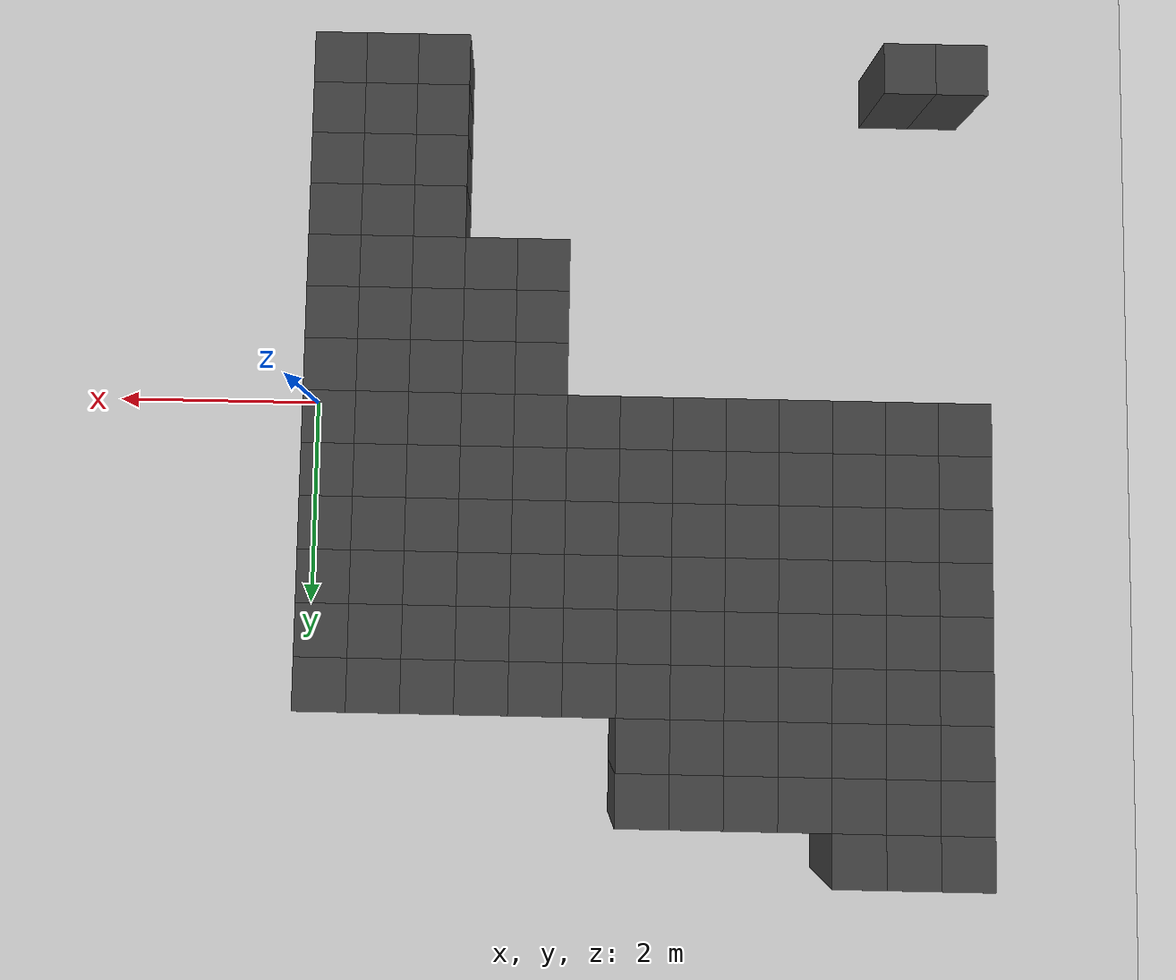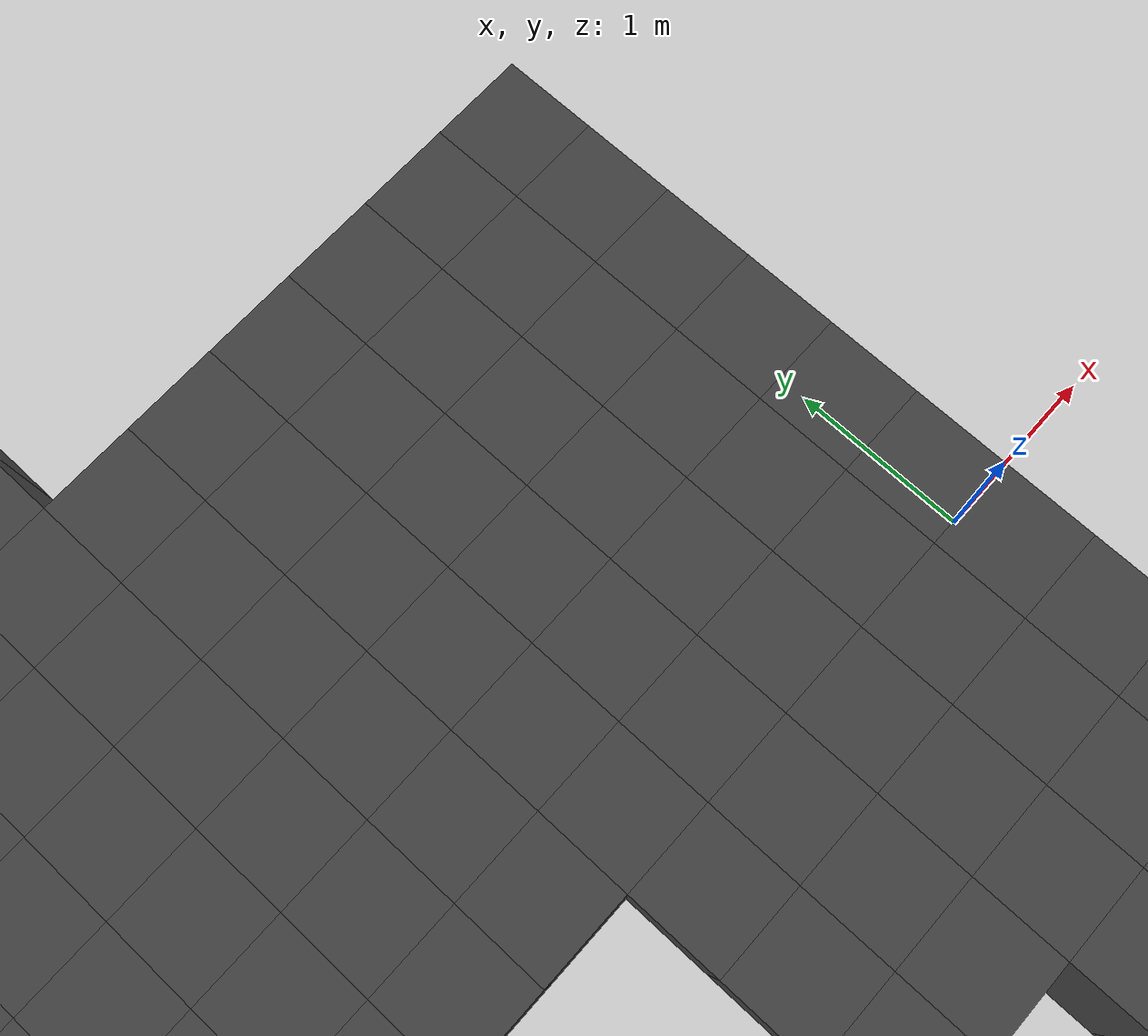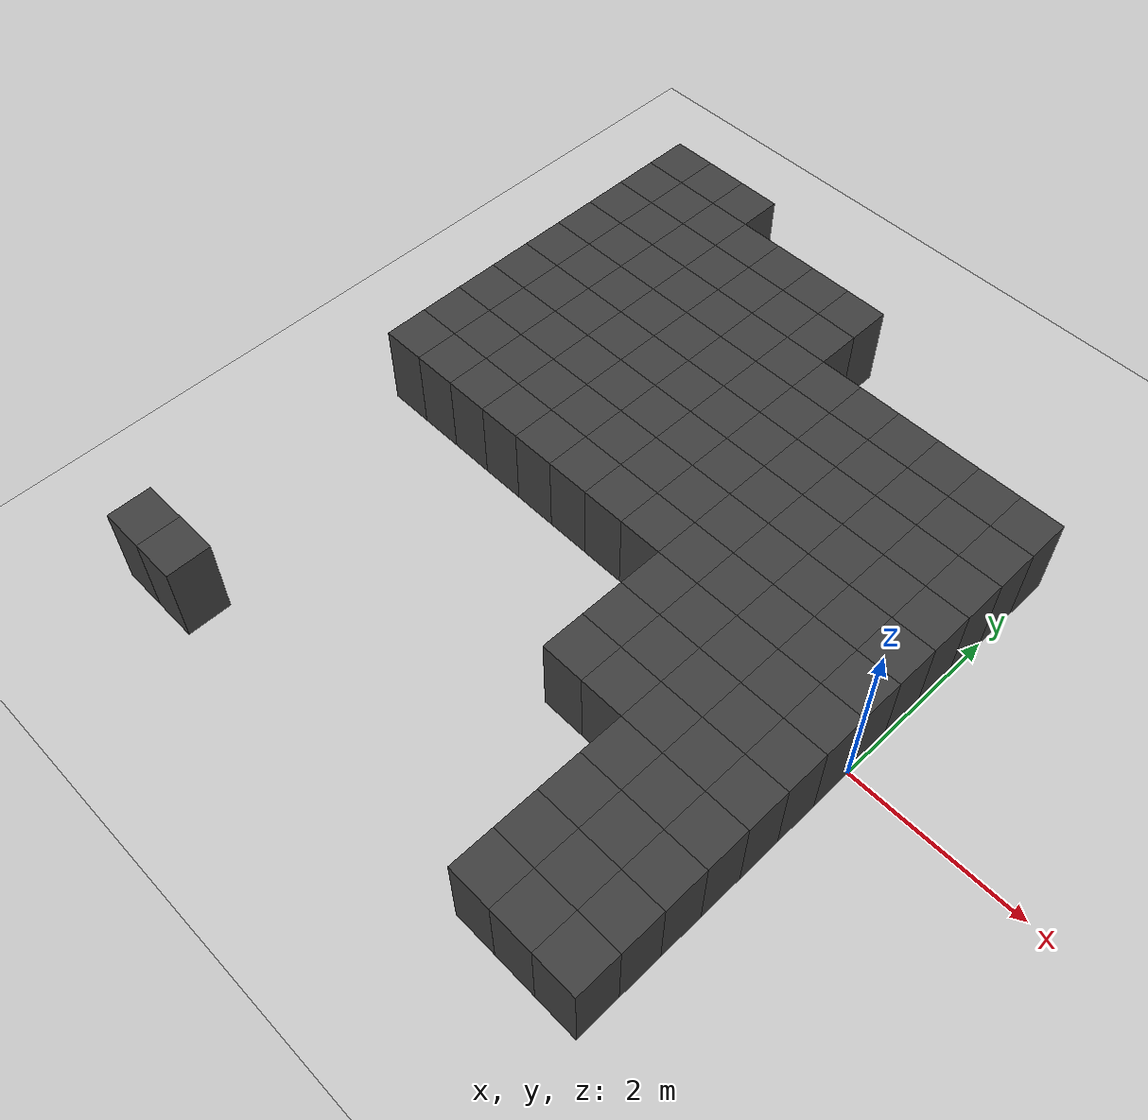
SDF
<sdf version="1.7">
 <world name="map_13820">
  <model name="ground_plane">
   <static>true</static>
   <link name="link">
    <collision name="collision">
     <geometry><plane><normal>0 0 1</normal><size>200 200</size></plane></geometry>
    </collision>
    <visual name="visual">
     <geometry><plane><normal>0 0 1</normal><size>200 200</size></plane></geometry>
     <material><ambient>0.8 0.8 0.8 1</ambient><diffuse>0.8 0.8 0.8 1</diffuse></material>
    </visual>
   </link>
  </model>
  <model name="maze_environment">
   <static>true</static>
   <link name="wall_526">
    <pose>-6.250 4.250 0.500 0 0 0</pose>
    <collision name="col"><geometry><box><size>0.5 0.5 1.0</size></box></geometry></collision>
    <visual name="vis">
     <geometry><box><size>0.5 0.5 1.0</size></box></geometry>
     <material><ambient>0.15 0.15 0.15 1</ambient><diffuse>0.25 0.25 0.25 1</diffuse></material>
    </visual>
   </link>
   <link name="wall_527">
    <pose>-5.750 4.250 0.500 0 0 0</pose>
    <collision name="col"><geometry><box><size>0.5 0.5 1.0</size></box></geometry></collision>
    <visual name="vis">
     <geometry><box><size>0.5 0.5 1.0</size></box></geometry>
     <material><ambient>0.15 0.15 0.15 1</ambient><diffuse>0.25 0.25 0.25 1</diffuse></material>
    </visual>
   </link>
   <link name="wall_528">
    <pose>-5.250 4.250 0.500 0 0 0</pose>
    <collision name="col"><geometry><box><size>0.5 0.5 1.0</size></box></geometry></collision>
    <visual name="vis">
     <geometry><box><size>0.5 0.5 1.0</size></box></geometry>
     <material><ambient>0.15 0.15 0.15 1</ambient><diffuse>0.25 0.25 0.25 1</diffuse></material>
    </visual>
   </link>
   <link name="wall_559">
    <pose>-6.250 3.750 0.500 0 0 0</pose>
    <collision name="col"><geometry><box><size>0.5 0.5 1.0</size></box></geometry></collision>
    <visual name="vis">
     <geometry><box><size>0.5 0.5 1.0</size></box></geometry>
     <material><ambient>0.15 0.15 0.15 1</ambient><diffuse>0.25 0.25 0.25 1</diffuse></material>
    </visual>
   </link>
   <link name="wall_560">
    <pose>-5.750 3.750 0.500 0 0 0</pose>
    <collision name="col"><geometry><box><size>0.5 0.5 1.0</size></box></geometry></collision>
    <visual name="vis">
     <geometry><box><size>0.5 0.5 1.0</size></box></geometry>
     <material><ambient>0.15 0.15 0.15 1</ambient><diffuse>0.25 0.25 0.25 1</diffuse></material>
    </visual>
   </link>
   <link name="wall_561">
    <pose>-5.250 3.750 0.500 0 0 0</pose>
    <collision name="col"><geometry><box><size>0.5 0.5 1.0</size></box></geometry></collision>
    <visual name="vis">
     <geometry><box><size>0.5 0.5 1.0</size></box></geometry>
     <material><ambient>0.15 0.15 0.15 1</ambient><diffuse>0.25 0.25 0.25 1</diffuse></material>
    </visual>
   </link>
   <link name="wall_562">
    <pose>-4.750 3.750 0.500 0 0 0</pose>
    <collision name="col"><geometry><box><size>0.5 0.5 1.0</size></box></geometry></collision>
    <visual name="vis">
     <geometry><box><size>0.5 0.5 1.0</size></box></geometry>
     <material><ambient>0.15 0.15 0.15 1</ambient><diffuse>0.25 0.25 0.25 1</diffuse></material>
    </visual>
   </link>
   <link name="wall_563">
    <pose>-4.250 3.750 0.500 0 0 0</pose>
    <collision name="col"><geometry><box><size>0.5 0.5 1.0</size></box></geometry></collision>
    <visual name="vis">
     <geometry><box><size>0.5 0.5 1.0</size></box></geometry>
     <material><ambient>0.15 0.15 0.15 1</ambient><diffuse>0.25 0.25 0.25 1</diffuse></material>
    </visual>
   </link>
   <link name="wall_564">
    <pose>-3.750 3.750 0.500 0 0 0</pose>
    <collision name="col"><geometry><box><size>0.5 0.5 1.0</size></box></geometry></collision>
    <visual name="vis">
     <geometry><box><size>0.5 0.5 1.0</size></box></geometry>
     <material><ambient>0.15 0.15 0.15 1</ambient><diffuse>0.25 0.25 0.25 1</diffuse></material>
    </visual>
   </link>
   <link name="wall_565">
    <pose>-3.250 3.750 0.500 0 0 0</pose>
    <collision name="col"><geometry><box><size>0.5 0.5 1.0</size></box></geometry></collision>
    <visual name="vis">
     <geometry><box><size>0.5 0.5 1.0</size></box></geometry>
     <material><ambient>0.15 0.15 0.15 1</ambient><diffuse>0.25 0.25 0.25 1</diffuse></material>
    </visual>
   </link>
   <link name="wall_596">
    <pose>-6.250 3.250 0.500 0 0 0</pose>
    <collision name="col"><geometry><box><size>0.5 0.5 1.0</size></box></geometry></collision>
    <visual name="vis">
     <geometry><box><size>0.5 0.5 1.0</size></box></geometry>
     <material><ambient>0.15 0.15 0.15 1</ambient><diffuse>0.25 0.25 0.25 1</diffuse></material>
    </visual>
   </link>
   <link name="wall_597">
    <pose>-5.750 3.250 0.500 0 0 0</pose>
    <collision name="col"><geometry><box><size>0.5 0.5 1.0</size></box></geometry></collision>
    <visual name="vis">
     <geometry><box><size>0.5 0.5 1.0</size></box></geometry>
     <material><ambient>0.15 0.15 0.15 1</ambient><diffuse>0.25 0.25 0.25 1</diffuse></material>
    </visual>
   </link>
   <link name="wall_598">
    <pose>-5.250 3.250 0.500 0 0 0</pose>
    <collision name="col"><geometry><box><size>0.5 0.5 1.0</size></box></geometry></collision>
    <visual name="vis">
     <geometry><box><size>0.5 0.5 1.0</size></box></geometry>
     <material><ambient>0.15 0.15 0.15 1</ambient><diffuse>0.25 0.25 0.25 1</diffuse></material>
    </visual>
   </link>
   <link name="wall_599">
    <pose>-4.750 3.250 0.500 0 0 0</pose>
    <collision name="col"><geometry><box><size>0.5 0.5 1.0</size></box></geometry></collision>
    <visual name="vis">
     <geometry><box><size>0.5 0.5 1.0</size></box></geometry>
     <material><ambient>0.15 0.15 0.15 1</ambient><diffuse>0.25 0.25 0.25 1</diffuse></material>
    </visual>
   </link>
   <link name="wall_600">
    <pose>-4.250 3.250 0.500 0 0 0</pose>
    <collision name="col"><geometry><box><size>0.5 0.5 1.0</size></box></geometry></collision>
    <visual name="vis">
     <geometry><box><size>0.5 0.5 1.0</size></box></geometry>
     <material><ambient>0.15 0.15 0.15 1</ambient><diffuse>0.25 0.25 0.25 1</diffuse></material>
    </visual>
   </link>
   <link name="wall_601">
    <pose>-3.750 3.250 0.500 0 0 0</pose>
    <collision name="col"><geometry><box><size>0.5 0.5 1.0</size></box></geometry></collision>
    <visual name="vis">
     <geometry><box><size>0.5 0.5 1.0</size></box></geometry>
     <material><ambient>0.15 0.15 0.15 1</ambient><diffuse>0.25 0.25 0.25 1</diffuse></material>
    </visual>
   </link>
   <link name="wall_602">
    <pose>-3.250 3.250 0.500 0 0 0</pose>
    <collision name="col"><geometry><box><size>0.5 0.5 1.0</size></box></geometry></collision>
    <visual name="vis">
     <geometry><box><size>0.5 0.5 1.0</size></box></geometry>
     <material><ambient>0.15 0.15 0.15 1</ambient><diffuse>0.25 0.25 0.25 1</diffuse></material>
    </visual>
   </link>
   <link name="wall_633">
    <pose>-6.250 2.750 0.500 0 0 0</pose>
    <collision name="col"><geometry><box><size>0.5 0.5 1.0</size></box></geometry></collision>
    <visual name="vis">
     <geometry><box><size>0.5 0.5 1.0</size></box></geometry>
     <material><ambient>0.15 0.15 0.15 1</ambient><diffuse>0.25 0.25 0.25 1</diffuse></material>
    </visual>
   </link>
   <link name="wall_634">
    <pose>-5.750 2.750 0.500 0 0 0</pose>
    <collision name="col"><geometry><box><size>0.5 0.5 1.0</size></box></geometry></collision>
    <visual name="vis">
     <geometry><box><size>0.5 0.5 1.0</size></box></geometry>
     <material><ambient>0.15 0.15 0.15 1</ambient><diffuse>0.25 0.25 0.25 1</diffuse></material>
    </visual>
   </link>
   <link name="wall_635">
    <pose>-5.250 2.750 0.500 0 0 0</pose>
    <collision name="col"><geometry><box><size>0.5 0.5 1.0</size></box></geometry></collision>
    <visual name="vis">
     <geometry><box><size>0.5 0.5 1.0</size></box></geometry>
     <material><ambient>0.15 0.15 0.15 1</ambient><diffuse>0.25 0.25 0.25 1</diffuse></material>
    </visual>
   </link>
   <link name="wall_636">
    <pose>-4.750 2.750 0.500 0 0 0</pose>
    <collision name="col"><geometry><box><size>0.5 0.5 1.0</size></box></geometry></collision>
    <visual name="vis">
     <geometry><box><size>0.5 0.5 1.0</size></box></geometry>
     <material><ambient>0.15 0.15 0.15 1</ambient><diffuse>0.25 0.25 0.25 1</diffuse></material>
    </visual>
   </link>
   <link name="wall_637">
    <pose>-4.250 2.750 0.500 0 0 0</pose>
    <collision name="col"><geometry><box><size>0.5 0.5 1.0</size></box></geometry></collision>
    <visual name="vis">
     <geometry><box><size>0.5 0.5 1.0</size></box></geometry>
     <material><ambient>0.15 0.15 0.15 1</ambient><diffuse>0.25 0.25 0.25 1</diffuse></material>
    </visual>
   </link>
   <link name="wall_638">
    <pose>-3.750 2.750 0.500 0 0 0</pose>
    <collision name="col"><geometry><box><size>0.5 0.5 1.0</size></box></geometry></collision>
    <visual name="vis">
     <geometry><box><size>0.5 0.5 1.0</size></box></geometry>
     <material><ambient>0.15 0.15 0.15 1</ambient><diffuse>0.25 0.25 0.25 1</diffuse></material>
    </visual>
   </link>
   <link name="wall_639">
    <pose>-3.250 2.750 0.500 0 0 0</pose>
    <collision name="col"><geometry><box><size>0.5 0.5 1.0</size></box></geometry></collision>
    <visual name="vis">
     <geometry><box><size>0.5 0.5 1.0</size></box></geometry>
     <material><ambient>0.15 0.15 0.15 1</ambient><diffuse>0.25 0.25 0.25 1</diffuse></material>
    </visual>
   </link>
   <link name="wall_640">
    <pose>-2.750 2.750 0.500 0 0 0</pose>
    <collision name="col"><geometry><box><size>0.5 0.5 1.0</size></box></geometry></collision>
    <visual name="vis">
     <geometry><box><size>0.5 0.5 1.0</size></box></geometry>
     <material><ambient>0.15 0.15 0.15 1</ambient><diffuse>0.25 0.25 0.25 1</diffuse></material>
    </visual>
   </link>
   <link name="wall_641">
    <pose>-2.250 2.750 0.500 0 0 0</pose>
    <collision name="col"><geometry><box><size>0.5 0.5 1.0</size></box></geometry></collision>
    <visual name="vis">
     <geometry><box><size>0.5 0.5 1.0</size></box></geometry>
     <material><ambient>0.15 0.15 0.15 1</ambient><diffuse>0.25 0.25 0.25 1</diffuse></material>
    </visual>
   </link>
   <link name="wall_642">
    <pose>-1.750 2.750 0.500 0 0 0</pose>
    <collision name="col"><geometry><box><size>0.5 0.5 1.0</size></box></geometry></collision>
    <visual name="vis">
     <geometry><box><size>0.5 0.5 1.0</size></box></geometry>
     <material><ambient>0.15 0.15 0.15 1</ambient><diffuse>0.25 0.25 0.25 1</diffuse></material>
    </visual>
   </link>
   <link name="wall_643">
    <pose>-1.250 2.750 0.500 0 0 0</pose>
    <collision name="col"><geometry><box><size>0.5 0.5 1.0</size></box></geometry></collision>
    <visual name="vis">
     <geometry><box><size>0.5 0.5 1.0</size></box></geometry>
     <material><ambient>0.15 0.15 0.15 1</ambient><diffuse>0.25 0.25 0.25 1</diffuse></material>
    </visual>
   </link>
   <link name="wall_644">
    <pose>-0.750 2.750 0.500 0 0 0</pose>
    <collision name="col"><geometry><box><size>0.5 0.5 1.0</size></box></geometry></collision>
    <visual name="vis">
     <geometry><box><size>0.5 0.5 1.0</size></box></geometry>
     <material><ambient>0.15 0.15 0.15 1</ambient><diffuse>0.25 0.25 0.25 1</diffuse></material>
    </visual>
   </link>
   <link name="wall_645">
    <pose>-0.250 2.750 0.500 0 0 0</pose>
    <collision name="col"><geometry><box><size>0.5 0.5 1.0</size></box></geometry></collision>
    <visual name="vis">
     <geometry><box><size>0.5 0.5 1.0</size></box></geometry>
     <material><ambient>0.15 0.15 0.15 1</ambient><diffuse>0.25 0.25 0.25 1</diffuse></material>
    </visual>
   </link>
   <link name="wall_675">
    <pose>-6.250 2.250 0.500 0 0 0</pose>
    <collision name="col"><geometry><box><size>0.5 0.5 1.0</size></box></geometry></collision>
    <visual name="vis">
     <geometry><box><size>0.5 0.5 1.0</size></box></geometry>
     <material><ambient>0.15 0.15 0.15 1</ambient><diffuse>0.25 0.25 0.25 1</diffuse></material>
    </visual>
   </link>
   <link name="wall_676">
    <pose>-5.750 2.250 0.500 0 0 0</pose>
    <collision name="col"><geometry><box><size>0.5 0.5 1.0</size></box></geometry></collision>
    <visual name="vis">
     <geometry><box><size>0.5 0.5 1.0</size></box></geometry>
     <material><ambient>0.15 0.15 0.15 1</ambient><diffuse>0.25 0.25 0.25 1</diffuse></material>
    </visual>
   </link>
   <link name="wall_677">
    <pose>-5.250 2.250 0.500 0 0 0</pose>
    <collision name="col"><geometry><box><size>0.5 0.5 1.0</size></box></geometry></collision>
    <visual name="vis">
     <geometry><box><size>0.5 0.5 1.0</size></box></geometry>
     <material><ambient>0.15 0.15 0.15 1</ambient><diffuse>0.25 0.25 0.25 1</diffuse></material>
    </visual>
   </link>
   <link name="wall_678">
    <pose>-4.750 2.250 0.500 0 0 0</pose>
    <collision name="col"><geometry><box><size>0.5 0.5 1.0</size></box></geometry></collision>
    <visual name="vis">
     <geometry><box><size>0.5 0.5 1.0</size></box></geometry>
     <material><ambient>0.15 0.15 0.15 1</ambient><diffuse>0.25 0.25 0.25 1</diffuse></material>
    </visual>
   </link>
   <link name="wall_679">
    <pose>-4.250 2.250 0.500 0 0 0</pose>
    <collision name="col"><geometry><box><size>0.5 0.5 1.0</size></box></geometry></collision>
    <visual name="vis">
     <geometry><box><size>0.5 0.5 1.0</size></box></geometry>
     <material><ambient>0.15 0.15 0.15 1</ambient><diffuse>0.25 0.25 0.25 1</diffuse></material>
    </visual>
   </link>
   <link name="wall_680">
    <pose>-3.750 2.250 0.500 0 0 0</pose>
    <collision name="col"><geometry><box><size>0.5 0.5 1.0</size></box></geometry></collision>
    <visual name="vis">
     <geometry><box><size>0.5 0.5 1.0</size></box></geometry>
     <material><ambient>0.15 0.15 0.15 1</ambient><diffuse>0.25 0.25 0.25 1</diffuse></material>
    </visual>
   </link>
   <link name="wall_681">
    <pose>-3.250 2.250 0.500 0 0 0</pose>
    <collision name="col"><geometry><box><size>0.5 0.5 1.0</size></box></geometry></collision>
    <visual name="vis">
     <geometry><box><size>0.5 0.5 1.0</size></box></geometry>
     <material><ambient>0.15 0.15 0.15 1</ambient><diffuse>0.25 0.25 0.25 1</diffuse></material>
    </visual>
   </link>
   <link name="wall_682">
    <pose>-2.750 2.250 0.500 0 0 0</pose>
    <collision name="col"><geometry><box><size>0.5 0.5 1.0</size></box></geometry></collision>
    <visual name="vis">
     <geometry><box><size>0.5 0.5 1.0</size></box></geometry>
     <material><ambient>0.15 0.15 0.15 1</ambient><diffuse>0.25 0.25 0.25 1</diffuse></material>
    </visual>
   </link>
   <link name="wall_683">
    <pose>-2.250 2.250 0.500 0 0 0</pose>
    <collision name="col"><geometry><box><size>0.5 0.5 1.0</size></box></geometry></collision>
    <visual name="vis">
     <geometry><box><size>0.5 0.5 1.0</size></box></geometry>
     <material><ambient>0.15 0.15 0.15 1</ambient><diffuse>0.25 0.25 0.25 1</diffuse></material>
    </visual>
   </link>
   <link name="wall_684">
    <pose>-1.750 2.250 0.500 0 0 0</pose>
    <collision name="col"><geometry><box><size>0.5 0.5 1.0</size></box></geometry></collision>
    <visual name="vis">
     <geometry><box><size>0.5 0.5 1.0</size></box></geometry>
     <material><ambient>0.15 0.15 0.15 1</ambient><diffuse>0.25 0.25 0.25 1</diffuse></material>
    </visual>
   </link>
   <link name="wall_685">
    <pose>-1.250 2.250 0.500 0 0 0</pose>
    <collision name="col"><geometry><box><size>0.5 0.5 1.0</size></box></geometry></collision>
    <visual name="vis">
     <geometry><box><size>0.5 0.5 1.0</size></box></geometry>
     <material><ambient>0.15 0.15 0.15 1</ambient><diffuse>0.25 0.25 0.25 1</diffuse></material>
    </visual>
   </link>
   <link name="wall_686">
    <pose>-0.750 2.250 0.500 0 0 0</pose>
    <collision name="col"><geometry><box><size>0.5 0.5 1.0</size></box></geometry></collision>
    <visual name="vis">
     <geometry><box><size>0.5 0.5 1.0</size></box></geometry>
     <material><ambient>0.15 0.15 0.15 1</ambient><diffuse>0.25 0.25 0.25 1</diffuse></material>
    </visual>
   </link>
   <link name="wall_687">
    <pose>-0.250 2.250 0.500 0 0 0</pose>
    <collision name="col"><geometry><box><size>0.5 0.5 1.0</size></box></geometry></collision>
    <visual name="vis">
     <geometry><box><size>0.5 0.5 1.0</size></box></geometry>
     <material><ambient>0.15 0.15 0.15 1</ambient><diffuse>0.25 0.25 0.25 1</diffuse></material>
    </visual>
   </link>
   <link name="wall_717">
    <pose>-6.250 1.750 0.500 0 0 0</pose>
    <collision name="col"><geometry><box><size>0.5 0.5 1.0</size></box></geometry></collision>
    <visual name="vis">
     <geometry><box><size>0.5 0.5 1.0</size></box></geometry>
     <material><ambient>0.15 0.15 0.15 1</ambient><diffuse>0.25 0.25 0.25 1</diffuse></material>
    </visual>
   </link>
   <link name="wall_718">
    <pose>-5.750 1.750 0.500 0 0 0</pose>
    <collision name="col"><geometry><box><size>0.5 0.5 1.0</size></box></geometry></collision>
    <visual name="vis">
     <geometry><box><size>0.5 0.5 1.0</size></box></geometry>
     <material><ambient>0.15 0.15 0.15 1</ambient><diffuse>0.25 0.25 0.25 1</diffuse></material>
    </visual>
   </link>
   <link name="wall_719">
    <pose>-5.250 1.750 0.500 0 0 0</pose>
    <collision name="col"><geometry><box><size>0.5 0.5 1.0</size></box></geometry></collision>
    <visual name="vis">
     <geometry><box><size>0.5 0.5 1.0</size></box></geometry>
     <material><ambient>0.15 0.15 0.15 1</ambient><diffuse>0.25 0.25 0.25 1</diffuse></material>
    </visual>
   </link>
   <link name="wall_720">
    <pose>-4.750 1.750 0.500 0 0 0</pose>
    <collision name="col"><geometry><box><size>0.5 0.5 1.0</size></box></geometry></collision>
    <visual name="vis">
     <geometry><box><size>0.5 0.5 1.0</size></box></geometry>
     <material><ambient>0.15 0.15 0.15 1</ambient><diffuse>0.25 0.25 0.25 1</diffuse></material>
    </visual>
   </link>
   <link name="wall_721">
    <pose>-4.250 1.750 0.500 0 0 0</pose>
    <collision name="col"><geometry><box><size>0.5 0.5 1.0</size></box></geometry></collision>
    <visual name="vis">
     <geometry><box><size>0.5 0.5 1.0</size></box></geometry>
     <material><ambient>0.15 0.15 0.15 1</ambient><diffuse>0.25 0.25 0.25 1</diffuse></material>
    </visual>
   </link>
   <link name="wall_722">
    <pose>-3.750 1.750 0.500 0 0 0</pose>
    <collision name="col"><geometry><box><size>0.5 0.5 1.0</size></box></geometry></collision>
    <visual name="vis">
     <geometry><box><size>0.5 0.5 1.0</size></box></geometry>
     <material><ambient>0.15 0.15 0.15 1</ambient><diffuse>0.25 0.25 0.25 1</diffuse></material>
    </visual>
   </link>
   <link name="wall_723">
    <pose>-3.250 1.750 0.500 0 0 0</pose>
    <collision name="col"><geometry><box><size>0.5 0.5 1.0</size></box></geometry></collision>
    <visual name="vis">
     <geometry><box><size>0.5 0.5 1.0</size></box></geometry>
     <material><ambient>0.15 0.15 0.15 1</ambient><diffuse>0.25 0.25 0.25 1</diffuse></material>
    </visual>
   </link>
   <link name="wall_724">
    <pose>-2.750 1.750 0.500 0 0 0</pose>
    <collision name="col"><geometry><box><size>0.5 0.5 1.0</size></box></geometry></collision>
    <visual name="vis">
     <geometry><box><size>0.5 0.5 1.0</size></box></geometry>
     <material><ambient>0.15 0.15 0.15 1</ambient><diffuse>0.25 0.25 0.25 1</diffuse></material>
    </visual>
   </link>
   <link name="wall_725">
    <pose>-2.250 1.750 0.500 0 0 0</pose>
    <collision name="col"><geometry><box><size>0.5 0.5 1.0</size></box></geometry></collision>
    <visual name="vis">
     <geometry><box><size>0.5 0.5 1.0</size></box></geometry>
     <material><ambient>0.15 0.15 0.15 1</ambient><diffuse>0.25 0.25 0.25 1</diffuse></material>
    </visual>
   </link>
   <link name="wall_726">
    <pose>-1.750 1.750 0.500 0 0 0</pose>
    <collision name="col"><geometry><box><size>0.5 0.5 1.0</size></box></geometry></collision>
    <visual name="vis">
     <geometry><box><size>0.5 0.5 1.0</size></box></geometry>
     <material><ambient>0.15 0.15 0.15 1</ambient><diffuse>0.25 0.25 0.25 1</diffuse></material>
    </visual>
   </link>
   <link name="wall_727">
    <pose>-1.250 1.750 0.500 0 0 0</pose>
    <collision name="col"><geometry><box><size>0.5 0.5 1.0</size></box></geometry></collision>
    <visual name="vis">
     <geometry><box><size>0.5 0.5 1.0</size></box></geometry>
     <material><ambient>0.15 0.15 0.15 1</ambient><diffuse>0.25 0.25 0.25 1</diffuse></material>
    </visual>
   </link>
   <link name="wall_728">
    <pose>-0.750 1.750 0.500 0 0 0</pose>
    <collision name="col"><geometry><box><size>0.5 0.5 1.0</size></box></geometry></collision>
    <visual name="vis">
     <geometry><box><size>0.5 0.5 1.0</size></box></geometry>
     <material><ambient>0.15 0.15 0.15 1</ambient><diffuse>0.25 0.25 0.25 1</diffuse></material>
    </visual>
   </link>
   <link name="wall_729">
    <pose>-0.250 1.750 0.500 0 0 0</pose>
    <collision name="col"><geometry><box><size>0.5 0.5 1.0</size></box></geometry></collision>
    <visual name="vis">
     <geometry><box><size>0.5 0.5 1.0</size></box></geometry>
     <material><ambient>0.15 0.15 0.15 1</ambient><diffuse>0.25 0.25 0.25 1</diffuse></material>
    </visual>
   </link>
   <link name="wall_759">
    <pose>-6.250 1.250 0.500 0 0 0</pose>
    <collision name="col"><geometry><box><size>0.5 0.5 1.0</size></box></geometry></collision>
    <visual name="vis">
     <geometry><box><size>0.5 0.5 1.0</size></box></geometry>
     <material><ambient>0.15 0.15 0.15 1</ambient><diffuse>0.25 0.25 0.25 1</diffuse></material>
    </visual>
   </link>
   <link name="wall_760">
    <pose>-5.750 1.250 0.500 0 0 0</pose>
    <collision name="col"><geometry><box><size>0.5 0.5 1.0</size></box></geometry></collision>
    <visual name="vis">
     <geometry><box><size>0.5 0.5 1.0</size></box></geometry>
     <material><ambient>0.15 0.15 0.15 1</ambient><diffuse>0.25 0.25 0.25 1</diffuse></material>
    </visual>
   </link>
   <link name="wall_761">
    <pose>-5.250 1.250 0.500 0 0 0</pose>
    <collision name="col"><geometry><box><size>0.5 0.5 1.0</size></box></geometry></collision>
    <visual name="vis">
     <geometry><box><size>0.5 0.5 1.0</size></box></geometry>
     <material><ambient>0.15 0.15 0.15 1</ambient><diffuse>0.25 0.25 0.25 1</diffuse></material>
    </visual>
   </link>
   <link name="wall_762">
    <pose>-4.750 1.250 0.500 0 0 0</pose>
    <collision name="col"><geometry><box><size>0.5 0.5 1.0</size></box></geometry></collision>
    <visual name="vis">
     <geometry><box><size>0.5 0.5 1.0</size></box></geometry>
     <material><ambient>0.15 0.15 0.15 1</ambient><diffuse>0.25 0.25 0.25 1</diffuse></material>
    </visual>
   </link>
   <link name="wall_763">
    <pose>-4.250 1.250 0.500 0 0 0</pose>
    <collision name="col"><geometry><box><size>0.5 0.5 1.0</size></box></geometry></collision>
    <visual name="vis">
     <geometry><box><size>0.5 0.5 1.0</size></box></geometry>
     <material><ambient>0.15 0.15 0.15 1</ambient><diffuse>0.25 0.25 0.25 1</diffuse></material>
    </visual>
   </link>
   <link name="wall_764">
    <pose>-3.750 1.250 0.500 0 0 0</pose>
    <collision name="col"><geometry><box><size>0.5 0.5 1.0</size></box></geometry></collision>
    <visual name="vis">
     <geometry><box><size>0.5 0.5 1.0</size></box></geometry>
     <material><ambient>0.15 0.15 0.15 1</ambient><diffuse>0.25 0.25 0.25 1</diffuse></material>
    </visual>
   </link>
   <link name="wall_765">
    <pose>-3.250 1.250 0.500 0 0 0</pose>
    <collision name="col"><geometry><box><size>0.5 0.5 1.0</size></box></geometry></collision>
    <visual name="vis">
     <geometry><box><size>0.5 0.5 1.0</size></box></geometry>
     <material><ambient>0.15 0.15 0.15 1</ambient><diffuse>0.25 0.25 0.25 1</diffuse></material>
    </visual>
   </link>
   <link name="wall_766">
    <pose>-2.750 1.250 0.500 0 0 0</pose>
    <collision name="col"><geometry><box><size>0.5 0.5 1.0</size></box></geometry></collision>
    <visual name="vis">
     <geometry><box><size>0.5 0.5 1.0</size></box></geometry>
     <material><ambient>0.15 0.15 0.15 1</ambient><diffuse>0.25 0.25 0.25 1</diffuse></material>
    </visual>
   </link>
   <link name="wall_767">
    <pose>-2.250 1.250 0.500 0 0 0</pose>
    <collision name="col"><geometry><box><size>0.5 0.5 1.0</size></box></geometry></collision>
    <visual name="vis">
     <geometry><box><size>0.5 0.5 1.0</size></box></geometry>
     <material><ambient>0.15 0.15 0.15 1</ambient><diffuse>0.25 0.25 0.25 1</diffuse></material>
    </visual>
   </link>
   <link name="wall_768">
    <pose>-1.750 1.250 0.500 0 0 0</pose>
    <collision name="col"><geometry><box><size>0.5 0.5 1.0</size></box></geometry></collision>
    <visual name="vis">
     <geometry><box><size>0.5 0.5 1.0</size></box></geometry>
     <material><ambient>0.15 0.15 0.15 1</ambient><diffuse>0.25 0.25 0.25 1</diffuse></material>
    </visual>
   </link>
   <link name="wall_769">
    <pose>-1.250 1.250 0.500 0 0 0</pose>
    <collision name="col"><geometry><box><size>0.5 0.5 1.0</size></box></geometry></collision>
    <visual name="vis">
     <geometry><box><size>0.5 0.5 1.0</size></box></geometry>
     <material><ambient>0.15 0.15 0.15 1</ambient><diffuse>0.25 0.25 0.25 1</diffuse></material>
    </visual>
   </link>
   <link name="wall_770">
    <pose>-0.750 1.250 0.500 0 0 0</pose>
    <collision name="col"><geometry><box><size>0.5 0.5 1.0</size></box></geometry></collision>
    <visual name="vis">
     <geometry><box><size>0.5 0.5 1.0</size></box></geometry>
     <material><ambient>0.15 0.15 0.15 1</ambient><diffuse>0.25 0.25 0.25 1</diffuse></material>
    </visual>
   </link>
   <link name="wall_771">
    <pose>-0.250 1.250 0.500 0 0 0</pose>
    <collision name="col"><geometry><box><size>0.5 0.5 1.0</size></box></geometry></collision>
    <visual name="vis">
     <geometry><box><size>0.5 0.5 1.0</size></box></geometry>
     <material><ambient>0.15 0.15 0.15 1</ambient><diffuse>0.25 0.25 0.25 1</diffuse></material>
    </visual>
   </link>
   <link name="wall_801">
    <pose>-6.250 0.750 0.500 0 0 0</pose>
    <collision name="col"><geometry><box><size>0.5 0.5 1.0</size></box></geometry></collision>
    <visual name="vis">
     <geometry><box><size>0.5 0.5 1.0</size></box></geometry>
     <material><ambient>0.15 0.15 0.15 1</ambient><diffuse>0.25 0.25 0.25 1</diffuse></material>
    </visual>
   </link>
   <link name="wall_802">
    <pose>-5.750 0.750 0.500 0 0 0</pose>
    <collision name="col"><geometry><box><size>0.5 0.5 1.0</size></box></geometry></collision>
    <visual name="vis">
     <geometry><box><size>0.5 0.5 1.0</size></box></geometry>
     <material><ambient>0.15 0.15 0.15 1</ambient><diffuse>0.25 0.25 0.25 1</diffuse></material>
    </visual>
   </link>
   <link name="wall_803">
    <pose>-5.250 0.750 0.500 0 0 0</pose>
    <collision name="col"><geometry><box><size>0.5 0.5 1.0</size></box></geometry></collision>
    <visual name="vis">
     <geometry><box><size>0.5 0.5 1.0</size></box></geometry>
     <material><ambient>0.15 0.15 0.15 1</ambient><diffuse>0.25 0.25 0.25 1</diffuse></material>
    </visual>
   </link>
   <link name="wall_804">
    <pose>-4.750 0.750 0.500 0 0 0</pose>
    <collision name="col"><geometry><box><size>0.5 0.5 1.0</size></box></geometry></collision>
    <visual name="vis">
     <geometry><box><size>0.5 0.5 1.0</size></box></geometry>
     <material><ambient>0.15 0.15 0.15 1</ambient><diffuse>0.25 0.25 0.25 1</diffuse></material>
    </visual>
   </link>
   <link name="wall_805">
    <pose>-4.250 0.750 0.500 0 0 0</pose>
    <collision name="col"><geometry><box><size>0.5 0.5 1.0</size></box></geometry></collision>
    <visual name="vis">
     <geometry><box><size>0.5 0.5 1.0</size></box></geometry>
     <material><ambient>0.15 0.15 0.15 1</ambient><diffuse>0.25 0.25 0.25 1</diffuse></material>
    </visual>
   </link>
   <link name="wall_806">
    <pose>-3.750 0.750 0.500 0 0 0</pose>
    <collision name="col"><geometry><box><size>0.5 0.5 1.0</size></box></geometry></collision>
    <visual name="vis">
     <geometry><box><size>0.5 0.5 1.0</size></box></geometry>
     <material><ambient>0.15 0.15 0.15 1</ambient><diffuse>0.25 0.25 0.25 1</diffuse></material>
    </visual>
   </link>
   <link name="wall_807">
    <pose>-3.250 0.750 0.500 0 0 0</pose>
    <collision name="col"><geometry><box><size>0.5 0.5 1.0</size></box></geometry></collision>
    <visual name="vis">
     <geometry><box><size>0.5 0.5 1.0</size></box></geometry>
     <material><ambient>0.15 0.15 0.15 1</ambient><diffuse>0.25 0.25 0.25 1</diffuse></material>
    </visual>
   </link>
   <link name="wall_808">
    <pose>-2.750 0.750 0.500 0 0 0</pose>
    <collision name="col"><geometry><box><size>0.5 0.5 1.0</size></box></geometry></collision>
    <visual name="vis">
     <geometry><box><size>0.5 0.5 1.0</size></box></geometry>
     <material><ambient>0.15 0.15 0.15 1</ambient><diffuse>0.25 0.25 0.25 1</diffuse></material>
    </visual>
   </link>
   <link name="wall_809">
    <pose>-2.250 0.750 0.500 0 0 0</pose>
    <collision name="col"><geometry><box><size>0.5 0.5 1.0</size></box></geometry></collision>
    <visual name="vis">
     <geometry><box><size>0.5 0.5 1.0</size></box></geometry>
     <material><ambient>0.15 0.15 0.15 1</ambient><diffuse>0.25 0.25 0.25 1</diffuse></material>
    </visual>
   </link>
   <link name="wall_810">
    <pose>-1.750 0.750 0.500 0 0 0</pose>
    <collision name="col"><geometry><box><size>0.5 0.5 1.0</size></box></geometry></collision>
    <visual name="vis">
     <geometry><box><size>0.5 0.5 1.0</size></box></geometry>
     <material><ambient>0.15 0.15 0.15 1</ambient><diffuse>0.25 0.25 0.25 1</diffuse></material>
    </visual>
   </link>
   <link name="wall_811">
    <pose>-1.250 0.750 0.500 0 0 0</pose>
    <collision name="col"><geometry><box><size>0.5 0.5 1.0</size></box></geometry></collision>
    <visual name="vis">
     <geometry><box><size>0.5 0.5 1.0</size></box></geometry>
     <material><ambient>0.15 0.15 0.15 1</ambient><diffuse>0.25 0.25 0.25 1</diffuse></material>
    </visual>
   </link>
   <link name="wall_812">
    <pose>-0.750 0.750 0.500 0 0 0</pose>
    <collision name="col"><geometry><box><size>0.5 0.5 1.0</size></box></geometry></collision>
    <visual name="vis">
     <geometry><box><size>0.5 0.5 1.0</size></box></geometry>
     <material><ambient>0.15 0.15 0.15 1</ambient><diffuse>0.25 0.25 0.25 1</diffuse></material>
    </visual>
   </link>
   <link name="wall_813">
    <pose>-0.250 0.750 0.500 0 0 0</pose>
    <collision name="col"><geometry><box><size>0.5 0.5 1.0</size></box></geometry></collision>
    <visual name="vis">
     <geometry><box><size>0.5 0.5 1.0</size></box></geometry>
     <material><ambient>0.15 0.15 0.15 1</ambient><diffuse>0.25 0.25 0.25 1</diffuse></material>
    </visual>
   </link>
   <link name="wall_843">
    <pose>-6.250 0.250 0.500 0 0 0</pose>
    <collision name="col"><geometry><box><size>0.5 0.5 1.0</size></box></geometry></collision>
    <visual name="vis">
     <geometry><box><size>0.5 0.5 1.0</size></box></geometry>
     <material><ambient>0.15 0.15 0.15 1</ambient><diffuse>0.25 0.25 0.25 1</diffuse></material>
    </visual>
   </link>
   <link name="wall_844">
    <pose>-5.750 0.250 0.500 0 0 0</pose>
    <collision name="col"><geometry><box><size>0.5 0.5 1.0</size></box></geometry></collision>
    <visual name="vis">
     <geometry><box><size>0.5 0.5 1.0</size></box></geometry>
     <material><ambient>0.15 0.15 0.15 1</ambient><diffuse>0.25 0.25 0.25 1</diffuse></material>
    </visual>
   </link>
   <link name="wall_845">
    <pose>-5.250 0.250 0.500 0 0 0</pose>
    <collision name="col"><geometry><box><size>0.5 0.5 1.0</size></box></geometry></collision>
    <visual name="vis">
     <geometry><box><size>0.5 0.5 1.0</size></box></geometry>
     <material><ambient>0.15 0.15 0.15 1</ambient><diffuse>0.25 0.25 0.25 1</diffuse></material>
    </visual>
   </link>
   <link name="wall_846">
    <pose>-4.750 0.250 0.500 0 0 0</pose>
    <collision name="col"><geometry><box><size>0.5 0.5 1.0</size></box></geometry></collision>
    <visual name="vis">
     <geometry><box><size>0.5 0.5 1.0</size></box></geometry>
     <material><ambient>0.15 0.15 0.15 1</ambient><diffuse>0.25 0.25 0.25 1</diffuse></material>
    </visual>
   </link>
   <link name="wall_847">
    <pose>-4.250 0.250 0.500 0 0 0</pose>
    <collision name="col"><geometry><box><size>0.5 0.5 1.0</size></box></geometry></collision>
    <visual name="vis">
     <geometry><box><size>0.5 0.5 1.0</size></box></geometry>
     <material><ambient>0.15 0.15 0.15 1</ambient><diffuse>0.25 0.25 0.25 1</diffuse></material>
    </visual>
   </link>
   <link name="wall_848">
    <pose>-3.750 0.250 0.500 0 0 0</pose>
    <collision name="col"><geometry><box><size>0.5 0.5 1.0</size></box></geometry></collision>
    <visual name="vis">
     <geometry><box><size>0.5 0.5 1.0</size></box></geometry>
     <material><ambient>0.15 0.15 0.15 1</ambient><diffuse>0.25 0.25 0.25 1</diffuse></material>
    </visual>
   </link>
   <link name="wall_849">
    <pose>-3.250 0.250 0.500 0 0 0</pose>
    <collision name="col"><geometry><box><size>0.5 0.5 1.0</size></box></geometry></collision>
    <visual name="vis">
     <geometry><box><size>0.5 0.5 1.0</size></box></geometry>
     <material><ambient>0.15 0.15 0.15 1</ambient><diffuse>0.25 0.25 0.25 1</diffuse></material>
    </visual>
   </link>
   <link name="wall_850">
    <pose>-2.750 0.250 0.500 0 0 0</pose>
    <collision name="col"><geometry><box><size>0.5 0.5 1.0</size></box></geometry></collision>
    <visual name="vis">
     <geometry><box><size>0.5 0.5 1.0</size></box></geometry>
     <material><ambient>0.15 0.15 0.15 1</ambient><diffuse>0.25 0.25 0.25 1</diffuse></material>
    </visual>
   </link>
   <link name="wall_851">
    <pose>-2.250 0.250 0.500 0 0 0</pose>
    <collision name="col"><geometry><box><size>0.5 0.5 1.0</size></box></geometry></collision>
    <visual name="vis">
     <geometry><box><size>0.5 0.5 1.0</size></box></geometry>
     <material><ambient>0.15 0.15 0.15 1</ambient><diffuse>0.25 0.25 0.25 1</diffuse></material>
    </visual>
   </link>
   <link name="wall_852">
    <pose>-1.750 0.250 0.500 0 0 0</pose>
    <collision name="col"><geometry><box><size>0.5 0.5 1.0</size></box></geometry></collision>
    <visual name="vis">
     <geometry><box><size>0.5 0.5 1.0</size></box></geometry>
     <material><ambient>0.15 0.15 0.15 1</ambient><diffuse>0.25 0.25 0.25 1</diffuse></material>
    </visual>
   </link>
   <link name="wall_853">
    <pose>-1.250 0.250 0.500 0 0 0</pose>
    <collision name="col"><geometry><box><size>0.5 0.5 1.0</size></box></geometry></collision>
    <visual name="vis">
     <geometry><box><size>0.5 0.5 1.0</size></box></geometry>
     <material><ambient>0.15 0.15 0.15 1</ambient><diffuse>0.25 0.25 0.25 1</diffuse></material>
    </visual>
   </link>
   <link name="wall_854">
    <pose>-0.750 0.250 0.500 0 0 0</pose>
    <collision name="col"><geometry><box><size>0.5 0.5 1.0</size></box></geometry></collision>
    <visual name="vis">
     <geometry><box><size>0.5 0.5 1.0</size></box></geometry>
     <material><ambient>0.15 0.15 0.15 1</ambient><diffuse>0.25 0.25 0.25 1</diffuse></material>
    </visual>
   </link>
   <link name="wall_855">
    <pose>-0.250 0.250 0.500 0 0 0</pose>
    <collision name="col"><geometry><box><size>0.5 0.5 1.0</size></box></geometry></collision>
    <visual name="vis">
     <geometry><box><size>0.5 0.5 1.0</size></box></geometry>
     <material><ambient>0.15 0.15 0.15 1</ambient><diffuse>0.25 0.25 0.25 1</diffuse></material>
    </visual>
   </link>
   <link name="wall_891">
    <pose>-2.250 -0.250 0.500 0 0 0</pose>
    <collision name="col"><geometry><box><size>0.5 0.5 1.0</size></box></geometry></collision>
    <visual name="vis">
     <geometry><box><size>0.5 0.5 1.0</size></box></geometry>
     <material><ambient>0.15 0.15 0.15 1</ambient><diffuse>0.25 0.25 0.25 1</diffuse></material>
    </visual>
   </link>
   <link name="wall_892">
    <pose>-1.750 -0.250 0.500 0 0 0</pose>
    <collision name="col"><geometry><box><size>0.5 0.5 1.0</size></box></geometry></collision>
    <visual name="vis">
     <geometry><box><size>0.5 0.5 1.0</size></box></geometry>
     <material><ambient>0.15 0.15 0.15 1</ambient><diffuse>0.25 0.25 0.25 1</diffuse></material>
    </visual>
   </link>
   <link name="wall_893">
    <pose>-1.250 -0.250 0.500 0 0 0</pose>
    <collision name="col"><geometry><box><size>0.5 0.5 1.0</size></box></geometry></collision>
    <visual name="vis">
     <geometry><box><size>0.5 0.5 1.0</size></box></geometry>
     <material><ambient>0.15 0.15 0.15 1</ambient><diffuse>0.25 0.25 0.25 1</diffuse></material>
    </visual>
   </link>
   <link name="wall_894">
    <pose>-0.750 -0.250 0.500 0 0 0</pose>
    <collision name="col"><geometry><box><size>0.5 0.5 1.0</size></box></geometry></collision>
    <visual name="vis">
     <geometry><box><size>0.5 0.5 1.0</size></box></geometry>
     <material><ambient>0.15 0.15 0.15 1</ambient><diffuse>0.25 0.25 0.25 1</diffuse></material>
    </visual>
   </link>
   <link name="wall_895">
    <pose>-0.250 -0.250 0.500 0 0 0</pose>
    <collision name="col"><geometry><box><size>0.5 0.5 1.0</size></box></geometry></collision>
    <visual name="vis">
     <geometry><box><size>0.5 0.5 1.0</size></box></geometry>
     <material><ambient>0.15 0.15 0.15 1</ambient><diffuse>0.25 0.25 0.25 1</diffuse></material>
    </visual>
   </link>
   <link name="wall_931">
    <pose>-2.250 -0.750 0.500 0 0 0</pose>
    <collision name="col"><geometry><box><size>0.5 0.5 1.0</size></box></geometry></collision>
    <visual name="vis">
     <geometry><box><size>0.5 0.5 1.0</size></box></geometry>
     <material><ambient>0.15 0.15 0.15 1</ambient><diffuse>0.25 0.25 0.25 1</diffuse></material>
    </visual>
   </link>
   <link name="wall_932">
    <pose>-1.750 -0.750 0.500 0 0 0</pose>
    <collision name="col"><geometry><box><size>0.5 0.5 1.0</size></box></geometry></collision>
    <visual name="vis">
     <geometry><box><size>0.5 0.5 1.0</size></box></geometry>
     <material><ambient>0.15 0.15 0.15 1</ambient><diffuse>0.25 0.25 0.25 1</diffuse></material>
    </visual>
   </link>
   <link name="wall_933">
    <pose>-1.250 -0.750 0.500 0 0 0</pose>
    <collision name="col"><geometry><box><size>0.5 0.5 1.0</size></box></geometry></collision>
    <visual name="vis">
     <geometry><box><size>0.5 0.5 1.0</size></box></geometry>
     <material><ambient>0.15 0.15 0.15 1</ambient><diffuse>0.25 0.25 0.25 1</diffuse></material>
    </visual>
   </link>
   <link name="wall_934">
    <pose>-0.750 -0.750 0.500 0 0 0</pose>
    <collision name="col"><geometry><box><size>0.5 0.5 1.0</size></box></geometry></collision>
    <visual name="vis">
     <geometry><box><size>0.5 0.5 1.0</size></box></geometry>
     <material><ambient>0.15 0.15 0.15 1</ambient><diffuse>0.25 0.25 0.25 1</diffuse></material>
    </visual>
   </link>
   <link name="wall_935">
    <pose>-0.250 -0.750 0.500 0 0 0</pose>
    <collision name="col"><geometry><box><size>0.5 0.5 1.0</size></box></geometry></collision>
    <visual name="vis">
     <geometry><box><size>0.5 0.5 1.0</size></box></geometry>
     <material><ambient>0.15 0.15 0.15 1</ambient><diffuse>0.25 0.25 0.25 1</diffuse></material>
    </visual>
   </link>
   <link name="wall_964">
    <pose>-2.250 -1.250 0.500 0 0 0</pose>
    <collision name="col"><geometry><box><size>0.5 0.5 1.0</size></box></geometry></collision>
    <visual name="vis">
     <geometry><box><size>0.5 0.5 1.0</size></box></geometry>
     <material><ambient>0.15 0.15 0.15 1</ambient><diffuse>0.25 0.25 0.25 1</diffuse></material>
    </visual>
   </link>
   <link name="wall_965">
    <pose>-1.750 -1.250 0.500 0 0 0</pose>
    <collision name="col"><geometry><box><size>0.5 0.5 1.0</size></box></geometry></collision>
    <visual name="vis">
     <geometry><box><size>0.5 0.5 1.0</size></box></geometry>
     <material><ambient>0.15 0.15 0.15 1</ambient><diffuse>0.25 0.25 0.25 1</diffuse></material>
    </visual>
   </link>
   <link name="wall_966">
    <pose>-1.250 -1.250 0.500 0 0 0</pose>
    <collision name="col"><geometry><box><size>0.5 0.5 1.0</size></box></geometry></collision>
    <visual name="vis">
     <geometry><box><size>0.5 0.5 1.0</size></box></geometry>
     <material><ambient>0.15 0.15 0.15 1</ambient><diffuse>0.25 0.25 0.25 1</diffuse></material>
    </visual>
   </link>
   <link name="wall_967">
    <pose>-0.750 -1.250 0.500 0 0 0</pose>
    <collision name="col"><geometry><box><size>0.5 0.5 1.0</size></box></geometry></collision>
    <visual name="vis">
     <geometry><box><size>0.5 0.5 1.0</size></box></geometry>
     <material><ambient>0.15 0.15 0.15 1</ambient><diffuse>0.25 0.25 0.25 1</diffuse></material>
    </visual>
   </link>
   <link name="wall_968">
    <pose>-0.250 -1.250 0.500 0 0 0</pose>
    <collision name="col"><geometry><box><size>0.5 0.5 1.0</size></box></geometry></collision>
    <visual name="vis">
     <geometry><box><size>0.5 0.5 1.0</size></box></geometry>
     <material><ambient>0.15 0.15 0.15 1</ambient><diffuse>0.25 0.25 0.25 1</diffuse></material>
    </visual>
   </link>
   <link name="wall_992">
    <pose>-1.250 -1.750 0.500 0 0 0</pose>
    <collision name="col"><geometry><box><size>0.5 0.5 1.0</size></box></geometry></collision>
    <visual name="vis">
     <geometry><box><size>0.5 0.5 1.0</size></box></geometry>
     <material><ambient>0.15 0.15 0.15 1</ambient><diffuse>0.25 0.25 0.25 1</diffuse></material>
    </visual>
   </link>
   <link name="wall_993">
    <pose>-0.750 -1.750 0.500 0 0 0</pose>
    <collision name="col"><geometry><box><size>0.5 0.5 1.0</size></box></geometry></collision>
    <visual name="vis">
     <geometry><box><size>0.5 0.5 1.0</size></box></geometry>
     <material><ambient>0.15 0.15 0.15 1</ambient><diffuse>0.25 0.25 0.25 1</diffuse></material>
    </visual>
   </link>
   <link name="wall_994">
    <pose>-0.250 -1.750 0.500 0 0 0</pose>
    <collision name="col"><geometry><box><size>0.5 0.5 1.0</size></box></geometry></collision>
    <visual name="vis">
     <geometry><box><size>0.5 0.5 1.0</size></box></geometry>
     <material><ambient>0.15 0.15 0.15 1</ambient><diffuse>0.25 0.25 0.25 1</diffuse></material>
    </visual>
   </link>
   <link name="wall_1021">
    <pose>-1.250 -2.250 0.500 0 0 0</pose>
    <collision name="col"><geometry><box><size>0.5 0.5 1.0</size></box></geometry></collision>
    <visual name="vis">
     <geometry><box><size>0.5 0.5 1.0</size></box></geometry>
     <material><ambient>0.15 0.15 0.15 1</ambient><diffuse>0.25 0.25 0.25 1</diffuse></material>
    </visual>
   </link>
   <link name="wall_1022">
    <pose>-0.750 -2.250 0.500 0 0 0</pose>
    <collision name="col"><geometry><box><size>0.5 0.5 1.0</size></box></geometry></collision>
    <visual name="vis">
     <geometry><box><size>0.5 0.5 1.0</size></box></geometry>
     <material><ambient>0.15 0.15 0.15 1</ambient><diffuse>0.25 0.25 0.25 1</diffuse></material>
    </visual>
   </link>
   <link name="wall_1023">
    <pose>-0.250 -2.250 0.500 0 0 0</pose>
    <collision name="col"><geometry><box><size>0.5 0.5 1.0</size></box></geometry></collision>
    <visual name="vis">
     <geometry><box><size>0.5 0.5 1.0</size></box></geometry>
     <material><ambient>0.15 0.15 0.15 1</ambient><diffuse>0.25 0.25 0.25 1</diffuse></material>
    </visual>
   </link>
   <link name="wall_1052">
    <pose>-1.250 -2.750 0.500 0 0 0</pose>
    <collision name="col"><geometry><box><size>0.5 0.5 1.0</size></box></geometry></collision>
    <visual name="vis">
     <geometry><box><size>0.5 0.5 1.0</size></box></geometry>
     <material><ambient>0.15 0.15 0.15 1</ambient><diffuse>0.25 0.25 0.25 1</diffuse></material>
    </visual>
   </link>
   <link name="wall_1053">
    <pose>-0.750 -2.750 0.500 0 0 0</pose>
    <collision name="col"><geometry><box><size>0.5 0.5 1.0</size></box></geometry></collision>
    <visual name="vis">
     <geometry><box><size>0.5 0.5 1.0</size></box></geometry>
     <material><ambient>0.15 0.15 0.15 1</ambient><diffuse>0.25 0.25 0.25 1</diffuse></material>
    </visual>
   </link>
   <link name="wall_1054">
    <pose>-0.250 -2.750 0.500 0 0 0</pose>
    <collision name="col"><geometry><box><size>0.5 0.5 1.0</size></box></geometry></collision>
    <visual name="vis">
     <geometry><box><size>0.5 0.5 1.0</size></box></geometry>
     <material><ambient>0.15 0.15 0.15 1</ambient><diffuse>0.25 0.25 0.25 1</diffuse></material>
    </visual>
   </link>
   <link name="wall_1090">
    <pose>-6.250 -3.250 0.500 0 0 0</pose>
    <collision name="col"><geometry><box><size>0.5 0.5 1.0</size></box></geometry></collision>
    <visual name="vis">
     <geometry><box><size>0.5 0.5 1.0</size></box></geometry>
     <material><ambient>0.15 0.15 0.15 1</ambient><diffuse>0.25 0.25 0.25 1</diffuse></material>
    </visual>
   </link>
   <link name="wall_1091">
    <pose>-5.750 -3.250 0.500 0 0 0</pose>
    <collision name="col"><geometry><box><size>0.5 0.5 1.0</size></box></geometry></collision>
    <visual name="vis">
     <geometry><box><size>0.5 0.5 1.0</size></box></geometry>
     <material><ambient>0.15 0.15 0.15 1</ambient><diffuse>0.25 0.25 0.25 1</diffuse></material>
    </visual>
   </link>
   <link name="wall_1092">
    <pose>-1.250 -3.250 0.500 0 0 0</pose>
    <collision name="col"><geometry><box><size>0.5 0.5 1.0</size></box></geometry></collision>
    <visual name="vis">
     <geometry><box><size>0.5 0.5 1.0</size></box></geometry>
     <material><ambient>0.15 0.15 0.15 1</ambient><diffuse>0.25 0.25 0.25 1</diffuse></material>
    </visual>
   </link>
   <link name="wall_1093">
    <pose>-0.750 -3.250 0.500 0 0 0</pose>
    <collision name="col"><geometry><box><size>0.5 0.5 1.0</size></box></geometry></collision>
    <visual name="vis">
     <geometry><box><size>0.5 0.5 1.0</size></box></geometry>
     <material><ambient>0.15 0.15 0.15 1</ambient><diffuse>0.25 0.25 0.25 1</diffuse></material>
    </visual>
   </link>
   <link name="wall_1094">
    <pose>-0.250 -3.250 0.500 0 0 0</pose>
    <collision name="col"><geometry><box><size>0.5 0.5 1.0</size></box></geometry></collision>
    <visual name="vis">
     <geometry><box><size>0.5 0.5 1.0</size></box></geometry>
     <material><ambient>0.15 0.15 0.15 1</ambient><diffuse>0.25 0.25 0.25 1</diffuse></material>
    </visual>
   </link>
  </model>
 </world>
</sdf>
